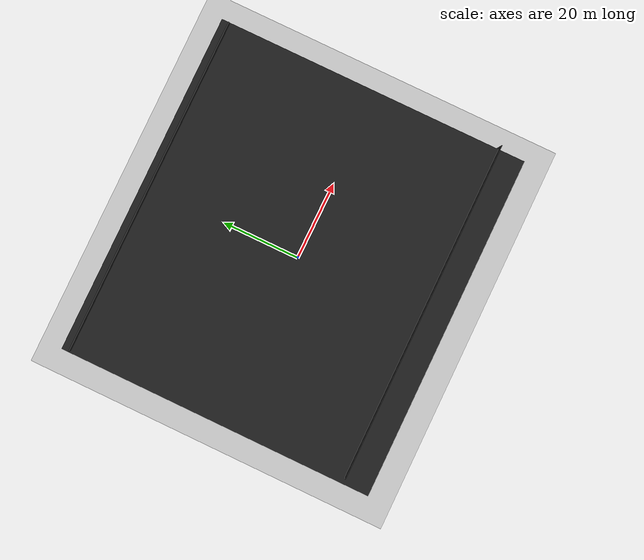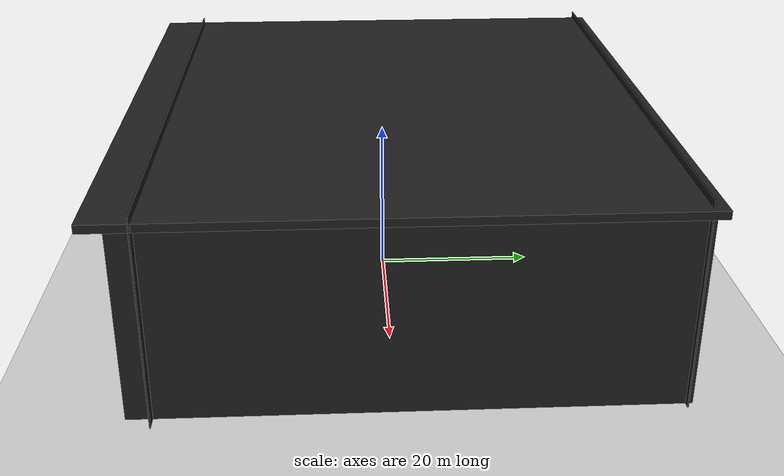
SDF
<sdf version="1.6">
 <world name="default">
  <model name="ground_plane">
   <static>1</static>
   <link name="link">
    <collision name="collision">
     <geometry><plane><normal>0 0 1</normal><size>100 100</size></plane></geometry>
     <surface>
      <contact><collide_bitmask>65535</collide_bitmask></contact>
      <friction><ode><mu>100</mu><mu2>50</mu2></ode></friction>
     </surface>
    </collision>
    <visual name="visual">
     <cast_shadows>0</cast_shadows>
     <geometry><plane><normal>0 0 1</normal><size>100 100</size></plane></geometry>
     <material>
      <script><uri>file://media/materials/scripts/gazebo.material</uri><name>Gazebo/Grey</name></script>
     </material>
    </visual>
   </link>
  </model>
  <gravity>0 0 -9.8</gravity>
  <magnetic_field>6e-06 2.3e-05 -4.2e-05</magnetic_field>
  <atmosphere type="adiabatic"/>
  <physics name="default_physics" default="0" type="ode">
   <max_step_size>0.001</max_step_size>
   <real_time_factor>1</real_time_factor>
   <real_time_update_rate>1000</real_time_update_rate>
  </physics>
  <scene><ambient>0.4 0.4 0.4 1</ambient><background>0.7 0.7 0.7 1</background><shadows>1</shadows></scene>
  <audio><device>default</device></audio>
  <spherical_coordinates>
   <surface_model>EARTH_WGS84</surface_model>
   <latitude_deg>0</latitude_deg>
   <longitude_deg>0</longitude_deg>
   <elevation>0</elevation>
   <heading_deg>0</heading_deg>
  </spherical_coordinates>
  <model name="newboxbig">
   <link name="Wall_0">
    <pose>-35.6838 0.000125 0 0 0 -1.5708</pose>
    <inertial>
     <inertia><ixx>0</ixx><ixy>0</ixy><ixz>0</ixz><iyy>0</iyy><iyz>0</iyz><izz>0</izz></inertia>
     <mass>0</mass>
    </inertial>
    <visual name="Wall_0_Visual">
     <pose>0 0 1.25 0 -0 0</pose>
     <geometry><box><size>63.4003 0.15 24.7544</size></box></geometry>
     <material>
      <script><uri>file://media/materials/scripts/gazebo.material</uri><name>Gazebo/Black</name></script>
      <ambient>1 1 1 1</ambient>
      <shader type="vertex"><normal_map>__default__</normal_map></shader>
      <diffuse>0 0 0 1</diffuse>
      <specular>0.1 0.1 0.1 1</specular>
      <emissive>0 0 0 1</emissive>
     </material>
     <meta><layer>0</layer></meta>
    </visual>
    <collision name="Wall_0_Collision">
     <pose>0 0 1.25 0 -0 0</pose>
     <geometry><box><size>63.4003 0.15 24.7544</size></box></geometry>
     <surface>
      <friction>
       <ode><mu>1</mu><mu2>1</mu2><fdir1>0 0 0</fdir1><slip1>0</slip1><slip2>0</slip2></ode>
       <torsional>
        <coefficient>1</coefficient>
        <patch_radius>0</patch_radius>
        <surface_radius>0</surface_radius>
        <use_patch_radius>1</use_patch_radius>
        <ode><slip>0</slip></ode>
       </torsional>
      </friction>
      <bounce><restitution_coefficient>0</restitution_coefficient><threshold>1e+06</threshold></bounce>
      <contact>
       <collide_without_contact>0</collide_without_contact>
       <collide_without_contact_bitmask>1</collide_without_contact_bitmask>
       <collide_bitmask>1</collide_bitmask>
       <ode>
        <soft_cfm>0</soft_cfm>
        <soft_erp>0.2</soft_erp>
        <kp>1e+13</kp>
        <kd>1</kd>
        <max_vel>0.01</max_vel>
        <min_depth>0</min_depth>
       </ode>
       <bullet>
        <split_impulse>1</split_impulse>
        <split_impulse_penetration_threshold>-0.01</split_impulse_penetration_threshold>
        <soft_cfm>0</soft_cfm>
        <soft_erp>0.2</soft_erp>
        <kp>1e+13</kp>
        <kd>1</kd>
       </bullet>
      </contact>
     </surface>
    </collision>
   </link>
   <link name="Wall_0_clone">
    <pose>35.4467 0.79017 0 0 0 -1.5708</pose>
    <inertial>
     <inertia><ixx>0</ixx><ixy>0</ixy><ixz>0</ixz><iyy>0</iyy><iyz>0</iyz><izz>0</izz></inertia>
     <mass>0</mass>
    </inertial>
    <visual name="Wall_0_Visual">
     <pose>0 0 1.25 0 -0 0</pose>
     <geometry><box><size>63.4003 0.15 24.7544</size></box></geometry>
     <material>
      <script><uri>file://media/materials/scripts/gazebo.material</uri><name>Gazebo/Black</name></script>
      <ambient>1 1 1 1</ambient>
      <shader type="vertex"><normal_map>__default__</normal_map></shader>
      <diffuse>0 0 0 1</diffuse>
      <specular>0.1 0.1 0.1 1</specular>
      <emissive>0 0 0 1</emissive>
     </material>
     <meta><layer>0</layer></meta>
    </visual>
    <collision name="Wall_0_Collision">
     <pose>0 0 1.25 0 -0 0</pose>
     <geometry><box><size>63.4003 0.15 24.7544</size></box></geometry>
     <surface>
      <friction>
       <ode><mu>1</mu><mu2>1</mu2><fdir1>0 0 0</fdir1><slip1>0</slip1><slip2>0</slip2></ode>
       <torsional>
        <coefficient>1</coefficient>
        <patch_radius>0</patch_radius>
        <surface_radius>0</surface_radius>
        <use_patch_radius>1</use_patch_radius>
        <ode><slip>0</slip></ode>
       </torsional>
      </friction>
      <bounce><restitution_coefficient>0</restitution_coefficient><threshold>1e+06</threshold></bounce>
      <contact>
       <collide_without_contact>0</collide_without_contact>
       <collide_without_contact_bitmask>1</collide_without_contact_bitmask>
       <collide_bitmask>1</collide_bitmask>
       <ode>
        <soft_cfm>0</soft_cfm>
        <soft_erp>0.2</soft_erp>
        <kp>1e+13</kp>
        <kd>1</kd>
        <max_vel>0.01</max_vel>
        <min_depth>0</min_depth>
       </ode>
       <bullet>
        <split_impulse>1</split_impulse>
        <split_impulse_penetration_threshold>-0.01</split_impulse_penetration_threshold>
        <soft_cfm>0</soft_cfm>
        <soft_erp>0.2</soft_erp>
        <kp>1e+13</kp>
        <kd>1</kd>
       </bullet>
      </contact>
     </surface>
    </collision>
   </link>
   <link name="Wall_3">
    <pose>7.9e-05 31.7325 0 0 -0 3.14159</pose>
    <inertial>
     <inertia><ixx>0</ixx><ixy>0</ixy><ixz>0</ixz><iyy>0</iyy><iyz>0</iyz><izz>0</izz></inertia>
     <mass>0</mass>
    </inertial>
    <visual name="Wall_3_Visual">
     <pose>0 0 1.25 0 -0 0</pose>
     <geometry><box><size>72.6019 0.15 28.4504</size></box></geometry>
     <material>
      <script><uri>file://media/materials/scripts/gazebo.material</uri><name>Gazebo/Black</name></script>
      <ambient>1 1 1 1</ambient>
      <shader type="vertex"><normal_map>__default__</normal_map></shader>
      <diffuse>0 0 0 1</diffuse>
      <specular>0.1 0.1 0.1 1</specular>
      <emissive>0 0 0 1</emissive>
     </material>
     <meta><layer>0</layer></meta>
    </visual>
    <collision name="Wall_3_Collision">
     <pose>0 0 1.25 0 -0 0</pose>
     <geometry><box><size>72.6019 0.15 28.4504</size></box></geometry>
     <surface>
      <friction>
       <ode><mu>1</mu><mu2>1</mu2><fdir1>0 0 0</fdir1><slip1>0</slip1><slip2>0</slip2></ode>
       <torsional>
        <coefficient>1</coefficient>
        <patch_radius>0</patch_radius>
        <surface_radius>0</surface_radius>
        <use_patch_radius>1</use_patch_radius>
        <ode><slip>0</slip></ode>
       </torsional>
      </friction>
      <bounce><restitution_coefficient>0</restitution_coefficient><threshold>1e+06</threshold></bounce>
      <contact>
       <collide_without_contact>0</collide_without_contact>
       <collide_without_contact_bitmask>1</collide_without_contact_bitmask>
       <collide_bitmask>1</collide_bitmask>
       <ode>
        <soft_cfm>0</soft_cfm>
        <soft_erp>0.2</soft_erp>
        <kp>1e+13</kp>
        <kd>1</kd>
        <max_vel>0.01</max_vel>
        <min_depth>0</min_depth>
       </ode>
       <bullet>
        <split_impulse>1</split_impulse>
        <split_impulse_penetration_threshold>-0.01</split_impulse_penetration_threshold>
        <soft_cfm>0</soft_cfm>
        <soft_erp>0.2</soft_erp>
        <kp>1e+13</kp>
        <kd>1</kd>
       </bullet>
      </contact>
     </surface>
    </collision>
   </link>
   <link name="Wall_3_clone">
    <pose>0.92801 -27.9212 0 0 -0 3.14159</pose>
    <inertial>
     <inertia><ixx>0</ixx><ixy>0</ixy><ixz>0</ixz><iyy>0</iyy><iyz>0</iyz><izz>0</izz></inertia>
     <mass>0</mass>
    </inertial>
    <visual name="Wall_3_Visual">
     <pose>0 0 1.25 0 -0 0</pose>
     <geometry><box><size>72.6019 0.15 28.4504</size></box></geometry>
     <material>
      <script><uri>file://media/materials/scripts/gazebo.material</uri><name>Gazebo/Black</name></script>
      <ambient>1 1 1 1</ambient>
      <shader type="vertex"><normal_map>__default__</normal_map></shader>
      <diffuse>0 0 0 1</diffuse>
      <specular>0.1 0.1 0.1 1</specular>
      <emissive>0 0 0 1</emissive>
     </material>
     <meta><layer>0</layer></meta>
    </visual>
    <collision name="Wall_3_Collision">
     <pose>0 0 1.25 0 -0 0</pose>
     <geometry><box><size>72.6019 0.15 28.4504</size></box></geometry>
     <surface>
      <friction>
       <ode><mu>1</mu><mu2>1</mu2><fdir1>0 0 0</fdir1><slip1>0</slip1><slip2>0</slip2></ode>
       <torsional>
        <coefficient>1</coefficient>
        <patch_radius>0</patch_radius>
        <surface_radius>0</surface_radius>
        <use_patch_radius>1</use_patch_radius>
        <ode><slip>0</slip></ode>
       </torsional>
      </friction>
      <bounce><restitution_coefficient>0</restitution_coefficient><threshold>1e+06</threshold></bounce>
      <contact>
       <collide_without_contact>0</collide_without_contact>
       <collide_without_contact_bitmask>1</collide_without_contact_bitmask>
       <collide_bitmask>1</collide_bitmask>
       <ode>
        <soft_cfm>0</soft_cfm>
        <soft_erp>0.2</soft_erp>
        <kp>1e+13</kp>
        <kd>1</kd>
        <max_vel>0.01</max_vel>
        <min_depth>0</min_depth>
       </ode>
       <bullet>
        <split_impulse>1</split_impulse>
        <split_impulse_penetration_threshold>-0.01</split_impulse_penetration_threshold>
        <soft_cfm>0</soft_cfm>
        <soft_erp>0.2</soft_erp>
        <kp>1e+13</kp>
        <kd>1</kd>
       </bullet>
      </contact>
     </surface>
    </collision>
   </link>
   <link name="link_0">
    <inertial>
     <mass>4914.27</mass>
     <inertia>
      <ixx>1.84347e+06</ixx>
      <ixy>0</ixy>
      <ixz>0</ixz>
      <iyy>2.19793e+06</iyy>
      <iyz>0</iyz>
      <izz>4.04058e+06</izz>
     </inertia>
    </inertial>
    <pose>-0.067481 -0.041466 13.8889 0 -0 0</pose>
    <visual name="visual">
     <geometry><box><size>73.2534 67.0859 1</size></box></geometry>
     <material>
      <lighting>1</lighting>
      <script><uri>file://media/materials/scripts/gazebo.material</uri><name>Gazebo/Black</name></script>
      <shader type="vertex"><normal_map>__default__</normal_map></shader>
      <ambient>0 0 0 1</ambient>
      <diffuse>0 0 0 1</diffuse>
      <specular>0.1 0.1 0.1 1</specular>
      <emissive>0 0 0 1</emissive>
     </material>
    </visual>
    <collision name="collision">
     <geometry><box><size>73.2534 67.0859 1</size></box></geometry>
     <surface>
      <friction>
       <ode><mu>1</mu><mu2>1</mu2><fdir1>0 0 0</fdir1><slip1>0</slip1><slip2>0</slip2></ode>
       <torsional>
        <coefficient>1</coefficient>
        <patch_radius>0</patch_radius>
        <surface_radius>0</surface_radius>
        <use_patch_radius>1</use_patch_radius>
        <ode><slip>0</slip></ode>
       </torsional>
      </friction>
      <bounce><restitution_coefficient>0</restitution_coefficient><threshold>1e+06</threshold></bounce>
      <contact>
       <collide_without_contact>0</collide_without_contact>
       <collide_without_contact_bitmask>1</collide_without_contact_bitmask>
       <collide_bitmask>1</collide_bitmask>
       <ode>
        <soft_cfm>0</soft_cfm>
        <soft_erp>0.2</soft_erp>
        <kp>1e+13</kp>
        <kd>1</kd>
        <max_vel>0.01</max_vel>
        <min_depth>0</min_depth>
       </ode>
       <bullet>
        <split_impulse>1</split_impulse>
        <split_impulse_penetration_threshold>-0.01</split_impulse_penetration_threshold>
        <soft_cfm>0</soft_cfm>
        <soft_erp>0.2</soft_erp>
        <kp>1e+13</kp>
        <kd>1</kd>
       </bullet>
      </contact>
     </surface>
    </collision>
   </link>
   <static>1</static>
   <pose>-0.23745 0.947056 10.005 0 -0 0</pose>
  </model>
  <light name="user_spot_light_0" type="spot">
   <pose>-9.91264 0.987511 1 0 -0 0</pose>
   <diffuse>0.5 0.5 0.5 1</diffuse>
   <specular>0.1 0.1 0.1 1</specular>
   <direction>0 0 -1</direction>
   <attenuation>
    <range>20</range>
    <constant>0.5</constant>
    <linear>0.01</linear>
    <quadratic>0.001</quadratic>
   </attenuation>
   <cast_shadows>0</cast_shadows>
   <spot><inner_angle>0.6</inner_angle><outer_angle>1</outer_angle><falloff>1</falloff></spot>
  </light>
 </world>
</sdf>
